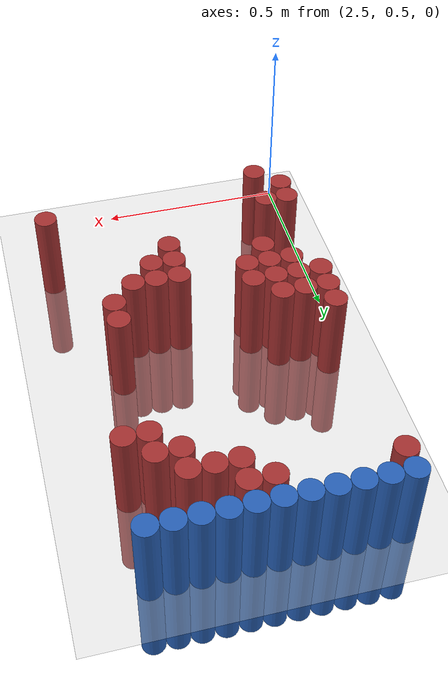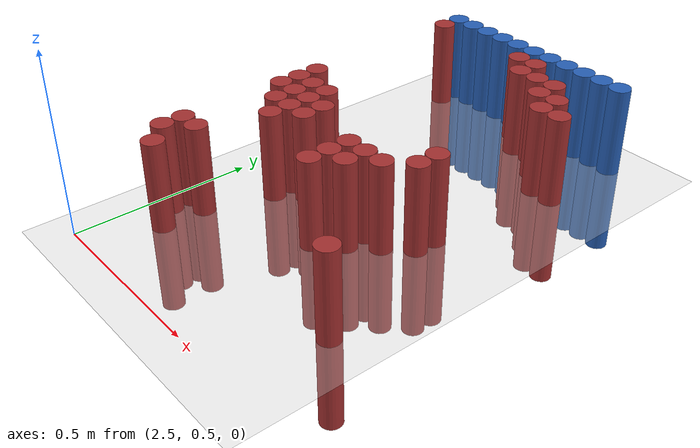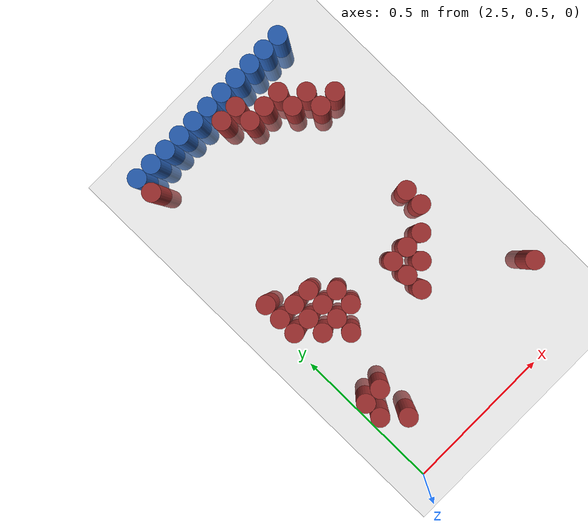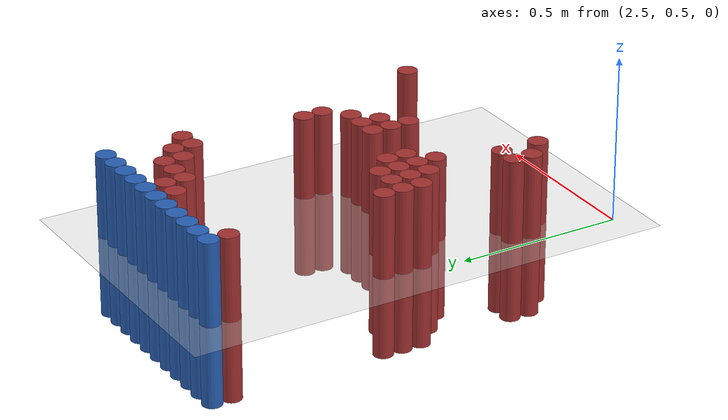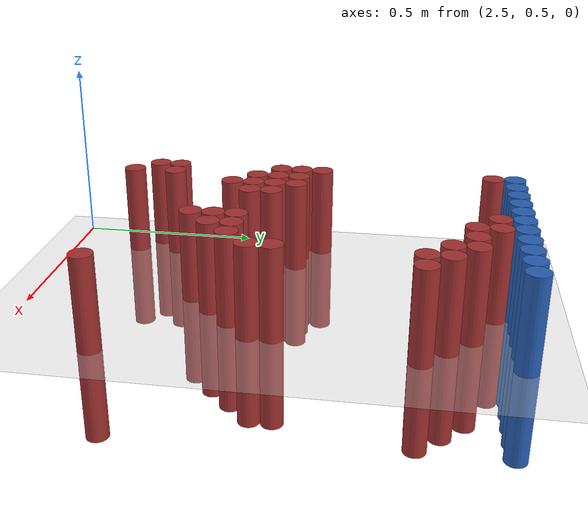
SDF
<sdf version="1.6">
 <world name="default">
  <model name="ground_plane">
   <static>1</static>
   <link name="link">
    <collision name="collision">
     <geometry><plane><normal>0 0 1</normal><size>100 100</size></plane></geometry>
     <surface><friction><ode><mu>100</mu><mu2>50</mu2></ode></friction></surface>
    </collision>
    <visual name="visual">
     <cast_shadows>0</cast_shadows>
     <geometry><plane><normal>0 0 1</normal><size>100 100</size></plane></geometry>
     <material>
      <script><uri>file://media/materials/scripts/gazebo.material</uri><name>Gazebo/Grey</name></script>
     </material>
    </visual>
   </link>
  </model>
  <model name="unit_cylinder_103">
   <static>1</static>
   <pose>2.550000 1.770000 0.000000 0.000000 0.000000 0.000000</pose>
   <link name="link">
    <inertial>
     <mass>1</mass>
     <inertia><ixx>0.145833</ixx><ixy>0</ixy><ixz>0</ixz><iyy>0.145833</iyy><iyz>0</iyz><izz>0.125</izz></inertia>
    </inertial>
    <collision name="collision">
     <geometry><cylinder><radius>0.030000</radius><length>0.5</length></cylinder></geometry>
    </collision>
    <visual name="visual">
     <geometry><cylinder><radius>0.030000</radius><length>0.5</length></cylinder></geometry>
     <material>
      <ambient>0.152000 0.379000 0.720000 1</ambient>
      <diffuse>0.152000 0.379000 0.720000 1</diffuse>
     </material>
     <material>
      <script><name>Gazebo/Grey</name><uri>file://media/materials/scripts/gazebo.material</uri></script>
     </material>
    </visual>
   </link>
  </model>
  <model name="unit_cylinder_104">
   <static>1</static>
   <pose>2.610000 1.770000 0.000000 0.000000 0.000000 0.000000</pose>
   <link name="link">
    <inertial>
     <mass>1</mass>
     <inertia><ixx>0.145833</ixx><ixy>0</ixy><ixz>0</ixz><iyy>0.145833</iyy><iyz>0</iyz><izz>0.125</izz></inertia>
    </inertial>
    <collision name="collision">
     <geometry><cylinder><radius>0.030000</radius><length>0.5</length></cylinder></geometry>
    </collision>
    <visual name="visual">
     <geometry><cylinder><radius>0.030000</radius><length>0.5</length></cylinder></geometry>
     <material>
      <ambient>0.152000 0.379000 0.720000 1</ambient>
      <diffuse>0.152000 0.379000 0.720000 1</diffuse>
     </material>
     <material>
      <script><name>Gazebo/Grey</name><uri>file://media/materials/scripts/gazebo.material</uri></script>
     </material>
    </visual>
   </link>
  </model>
  <model name="unit_cylinder_105">
   <static>1</static>
   <pose>2.670000 1.770000 0.000000 0.000000 0.000000 0.000000</pose>
   <link name="link">
    <inertial>
     <mass>1</mass>
     <inertia><ixx>0.145833</ixx><ixy>0</ixy><ixz>0</ixz><iyy>0.145833</iyy><iyz>0</iyz><izz>0.125</izz></inertia>
    </inertial>
    <collision name="collision">
     <geometry><cylinder><radius>0.030000</radius><length>0.5</length></cylinder></geometry>
    </collision>
    <visual name="visual">
     <geometry><cylinder><radius>0.030000</radius><length>0.5</length></cylinder></geometry>
     <material>
      <ambient>0.152000 0.379000 0.720000 1</ambient>
      <diffuse>0.152000 0.379000 0.720000 1</diffuse>
     </material>
     <material>
      <script><name>Gazebo/Grey</name><uri>file://media/materials/scripts/gazebo.material</uri></script>
     </material>
    </visual>
   </link>
  </model>
  <model name="unit_cylinder_106">
   <static>1</static>
   <pose>2.730000 1.770000 0.000000 0.000000 0.000000 0.000000</pose>
   <link name="link">
    <inertial>
     <mass>1</mass>
     <inertia><ixx>0.145833</ixx><ixy>0</ixy><ixz>0</ixz><iyy>0.145833</iyy><iyz>0</iyz><izz>0.125</izz></inertia>
    </inertial>
    <collision name="collision">
     <geometry><cylinder><radius>0.030000</radius><length>0.5</length></cylinder></geometry>
    </collision>
    <visual name="visual">
     <geometry><cylinder><radius>0.030000</radius><length>0.5</length></cylinder></geometry>
     <material>
      <ambient>0.152000 0.379000 0.720000 1</ambient>
      <diffuse>0.152000 0.379000 0.720000 1</diffuse>
     </material>
     <material>
      <script><name>Gazebo/Grey</name><uri>file://media/materials/scripts/gazebo.material</uri></script>
     </material>
    </visual>
   </link>
  </model>
  <model name="unit_cylinder_107">
   <static>1</static>
   <pose>2.790000 1.770000 0.000000 0.000000 0.000000 0.000000</pose>
   <link name="link">
    <inertial>
     <mass>1</mass>
     <inertia><ixx>0.145833</ixx><ixy>0</ixy><ixz>0</ixz><iyy>0.145833</iyy><iyz>0</iyz><izz>0.125</izz></inertia>
    </inertial>
    <collision name="collision">
     <geometry><cylinder><radius>0.030000</radius><length>0.5</length></cylinder></geometry>
    </collision>
    <visual name="visual">
     <geometry><cylinder><radius>0.030000</radius><length>0.5</length></cylinder></geometry>
     <material>
      <ambient>0.152000 0.379000 0.720000 1</ambient>
      <diffuse>0.152000 0.379000 0.720000 1</diffuse>
     </material>
     <material>
      <script><name>Gazebo/Grey</name><uri>file://media/materials/scripts/gazebo.material</uri></script>
     </material>
    </visual>
   </link>
  </model>
  <model name="unit_cylinder_108">
   <static>1</static>
   <pose>2.850000 1.770000 0.000000 0.000000 0.000000 0.000000</pose>
   <link name="link">
    <inertial>
     <mass>1</mass>
     <inertia><ixx>0.145833</ixx><ixy>0</ixy><ixz>0</ixz><iyy>0.145833</iyy><iyz>0</iyz><izz>0.125</izz></inertia>
    </inertial>
    <collision name="collision">
     <geometry><cylinder><radius>0.030000</radius><length>0.5</length></cylinder></geometry>
    </collision>
    <visual name="visual">
     <geometry><cylinder><radius>0.030000</radius><length>0.5</length></cylinder></geometry>
     <material>
      <ambient>0.152000 0.379000 0.720000 1</ambient>
      <diffuse>0.152000 0.379000 0.720000 1</diffuse>
     </material>
     <material>
      <script><name>Gazebo/Grey</name><uri>file://media/materials/scripts/gazebo.material</uri></script>
     </material>
    </visual>
   </link>
  </model>
  <model name="unit_cylinder_109">
   <static>1</static>
   <pose>2.910000 1.770000 0.000000 0.000000 0.000000 0.000000</pose>
   <link name="link">
    <inertial>
     <mass>1</mass>
     <inertia><ixx>0.145833</ixx><ixy>0</ixy><ixz>0</ixz><iyy>0.145833</iyy><iyz>0</iyz><izz>0.125</izz></inertia>
    </inertial>
    <collision name="collision">
     <geometry><cylinder><radius>0.030000</radius><length>0.5</length></cylinder></geometry>
    </collision>
    <visual name="visual">
     <geometry><cylinder><radius>0.030000</radius><length>0.5</length></cylinder></geometry>
     <material>
      <ambient>0.152000 0.379000 0.720000 1</ambient>
      <diffuse>0.152000 0.379000 0.720000 1</diffuse>
     </material>
     <material>
      <script><name>Gazebo/Grey</name><uri>file://media/materials/scripts/gazebo.material</uri></script>
     </material>
    </visual>
   </link>
  </model>
  <model name="unit_cylinder_110">
   <static>1</static>
   <pose>2.970000 1.770000 0.000000 0.000000 0.000000 0.000000</pose>
   <link name="link">
    <inertial>
     <mass>1</mass>
     <inertia><ixx>0.145833</ixx><ixy>0</ixy><ixz>0</ixz><iyy>0.145833</iyy><iyz>0</iyz><izz>0.125</izz></inertia>
    </inertial>
    <collision name="collision">
     <geometry><cylinder><radius>0.030000</radius><length>0.5</length></cylinder></geometry>
    </collision>
    <visual name="visual">
     <geometry><cylinder><radius>0.030000</radius><length>0.5</length></cylinder></geometry>
     <material>
      <ambient>0.152000 0.379000 0.720000 1</ambient>
      <diffuse>0.152000 0.379000 0.720000 1</diffuse>
     </material>
     <material>
      <script><name>Gazebo/Grey</name><uri>file://media/materials/scripts/gazebo.material</uri></script>
     </material>
    </visual>
   </link>
  </model>
  <model name="unit_cylinder_111">
   <static>1</static>
   <pose>3.030000 1.770000 0.000000 0.000000 0.000000 0.000000</pose>
   <link name="link">
    <inertial>
     <mass>1</mass>
     <inertia><ixx>0.145833</ixx><ixy>0</ixy><ixz>0</ixz><iyy>0.145833</iyy><iyz>0</iyz><izz>0.125</izz></inertia>
    </inertial>
    <collision name="collision">
     <geometry><cylinder><radius>0.030000</radius><length>0.5</length></cylinder></geometry>
    </collision>
    <visual name="visual">
     <geometry><cylinder><radius>0.030000</radius><length>0.5</length></cylinder></geometry>
     <material>
      <ambient>0.152000 0.379000 0.720000 1</ambient>
      <diffuse>0.152000 0.379000 0.720000 1</diffuse>
     </material>
     <material>
      <script><name>Gazebo/Grey</name><uri>file://media/materials/scripts/gazebo.material</uri></script>
     </material>
    </visual>
   </link>
  </model>
  <model name="unit_cylinder_112">
   <static>1</static>
   <pose>3.090000 1.770000 0.000000 0.000000 0.000000 0.000000</pose>
   <link name="link">
    <inertial>
     <mass>1</mass>
     <inertia><ixx>0.145833</ixx><ixy>0</ixy><ixz>0</ixz><iyy>0.145833</iyy><iyz>0</iyz><izz>0.125</izz></inertia>
    </inertial>
    <collision name="collision">
     <geometry><cylinder><radius>0.030000</radius><length>0.5</length></cylinder></geometry>
    </collision>
    <visual name="visual">
     <geometry><cylinder><radius>0.030000</radius><length>0.5</length></cylinder></geometry>
     <material>
      <ambient>0.152000 0.379000 0.720000 1</ambient>
      <diffuse>0.152000 0.379000 0.720000 1</diffuse>
     </material>
     <material>
      <script><name>Gazebo/Grey</name><uri>file://media/materials/scripts/gazebo.material</uri></script>
     </material>
    </visual>
   </link>
  </model>
  <model name="unit_cylinder_113">
   <static>1</static>
   <pose>3.150000 1.770000 0.000000 0.000000 0.000000 0.000000</pose>
   <link name="link">
    <inertial>
     <mass>1</mass>
     <inertia><ixx>0.145833</ixx><ixy>0</ixy><ixz>0</ixz><iyy>0.145833</iyy><iyz>0</iyz><izz>0.125</izz></inertia>
    </inertial>
    <collision name="collision">
     <geometry><cylinder><radius>0.030000</radius><length>0.5</length></cylinder></geometry>
    </collision>
    <visual name="visual">
     <geometry><cylinder><radius>0.030000</radius><length>0.5</length></cylinder></geometry>
     <material>
      <ambient>0.152000 0.379000 0.720000 1</ambient>
      <diffuse>0.152000 0.379000 0.720000 1</diffuse>
     </material>
     <material>
      <script><name>Gazebo/Grey</name><uri>file://media/materials/scripts/gazebo.material</uri></script>
     </material>
    </visual>
   </link>
  </model>
  <model name="unit_cylinder_126">
   <static>1</static>
   <pose>2.550000 1.710000 0.000000 0.000000 0.000000 0.000000</pose>
   <link name="link">
    <inertial>
     <mass>1</mass>
     <inertia><ixx>0.145833</ixx><ixy>0</ixy><ixz>0</ixz><iyy>0.145833</iyy><iyz>0</iyz><izz>0.125</izz></inertia>
    </inertial>
    <collision name="collision">
     <geometry><cylinder><radius>0.030000</radius><length>0.5</length></cylinder></geometry>
    </collision>
    <visual name="visual">
     <geometry><cylinder><radius>0.030000</radius><length>0.5</length></cylinder></geometry>
     <material>
      <ambient>0.648000 0.192000 0.192000 1</ambient>
      <diffuse>0.648000 0.192000 0.192000 1</diffuse>
     </material>
     <material>
      <script><name>Gazebo/Grey</name><uri>file://media/materials/scripts/gazebo.material</uri></script>
     </material>
    </visual>
   </link>
  </model>
  <model name="unit_cylinder_127">
   <static>1</static>
   <pose>2.850000 1.710000 0.000000 0.000000 0.000000 0.000000</pose>
   <link name="link">
    <inertial>
     <mass>1</mass>
     <inertia><ixx>0.145833</ixx><ixy>0</ixy><ixz>0</ixz><iyy>0.145833</iyy><iyz>0</iyz><izz>0.125</izz></inertia>
    </inertial>
    <collision name="collision">
     <geometry><cylinder><radius>0.030000</radius><length>0.5</length></cylinder></geometry>
    </collision>
    <visual name="visual">
     <geometry><cylinder><radius>0.030000</radius><length>0.5</length></cylinder></geometry>
     <material>
      <ambient>0.648000 0.192000 0.192000 1</ambient>
      <diffuse>0.648000 0.192000 0.192000 1</diffuse>
     </material>
     <material>
      <script><name>Gazebo/Grey</name><uri>file://media/materials/scripts/gazebo.material</uri></script>
     </material>
    </visual>
   </link>
  </model>
  <model name="unit_cylinder_128">
   <static>1</static>
   <pose>2.910000 1.710000 0.000000 0.000000 0.000000 0.000000</pose>
   <link name="link">
    <inertial>
     <mass>1</mass>
     <inertia><ixx>0.145833</ixx><ixy>0</ixy><ixz>0</ixz><iyy>0.145833</iyy><iyz>0</iyz><izz>0.125</izz></inertia>
    </inertial>
    <collision name="collision">
     <geometry><cylinder><radius>0.030000</radius><length>0.5</length></cylinder></geometry>
    </collision>
    <visual name="visual">
     <geometry><cylinder><radius>0.030000</radius><length>0.5</length></cylinder></geometry>
     <material>
      <ambient>0.648000 0.192000 0.192000 1</ambient>
      <diffuse>0.648000 0.192000 0.192000 1</diffuse>
     </material>
     <material>
      <script><name>Gazebo/Grey</name><uri>file://media/materials/scripts/gazebo.material</uri></script>
     </material>
    </visual>
   </link>
  </model>
  <model name="unit_cylinder_134">
   <static>1</static>
   <pose>2.910000 1.650000 0.000000 0.000000 0.000000 0.000000</pose>
   <link name="link">
    <inertial>
     <mass>1</mass>
     <inertia><ixx>0.145833</ixx><ixy>0</ixy><ixz>0</ixz><iyy>0.145833</iyy><iyz>0</iyz><izz>0.125</izz></inertia>
    </inertial>
    <collision name="collision">
     <geometry><cylinder><radius>0.030000</radius><length>0.5</length></cylinder></geometry>
    </collision>
    <visual name="visual">
     <geometry><cylinder><radius>0.030000</radius><length>0.5</length></cylinder></geometry>
     <material>
      <ambient>0.648000 0.192000 0.192000 1</ambient>
      <diffuse>0.648000 0.192000 0.192000 1</diffuse>
     </material>
     <material>
      <script><name>Gazebo/Grey</name><uri>file://media/materials/scripts/gazebo.material</uri></script>
     </material>
    </visual>
   </link>
  </model>
  <model name="unit_cylinder_135">
   <static>1</static>
   <pose>2.970000 1.650000 0.000000 0.000000 0.000000 0.000000</pose>
   <link name="link">
    <inertial>
     <mass>1</mass>
     <inertia><ixx>0.145833</ixx><ixy>0</ixy><ixz>0</ixz><iyy>0.145833</iyy><iyz>0</iyz><izz>0.125</izz></inertia>
    </inertial>
    <collision name="collision">
     <geometry><cylinder><radius>0.030000</radius><length>0.5</length></cylinder></geometry>
    </collision>
    <visual name="visual">
     <geometry><cylinder><radius>0.030000</radius><length>0.5</length></cylinder></geometry>
     <material>
      <ambient>0.648000 0.192000 0.192000 1</ambient>
      <diffuse>0.648000 0.192000 0.192000 1</diffuse>
     </material>
     <material>
      <script><name>Gazebo/Grey</name><uri>file://media/materials/scripts/gazebo.material</uri></script>
     </material>
    </visual>
   </link>
  </model>
  <model name="unit_cylinder_136">
   <static>1</static>
   <pose>3.030000 1.650000 0.000000 0.000000 0.000000 0.000000</pose>
   <link name="link">
    <inertial>
     <mass>1</mass>
     <inertia><ixx>0.145833</ixx><ixy>0</ixy><ixz>0</ixz><iyy>0.145833</iyy><iyz>0</iyz><izz>0.125</izz></inertia>
    </inertial>
    <collision name="collision">
     <geometry><cylinder><radius>0.030000</radius><length>0.5</length></cylinder></geometry>
    </collision>
    <visual name="visual">
     <geometry><cylinder><radius>0.030000</radius><length>0.5</length></cylinder></geometry>
     <material>
      <ambient>0.648000 0.192000 0.192000 1</ambient>
      <diffuse>0.648000 0.192000 0.192000 1</diffuse>
     </material>
     <material>
      <script><name>Gazebo/Grey</name><uri>file://media/materials/scripts/gazebo.material</uri></script>
     </material>
    </visual>
   </link>
  </model>
  <model name="unit_cylinder_141">
   <static>1</static>
   <pose>3.030000 1.590000 0.000000 0.000000 0.000000 0.000000</pose>
   <link name="link">
    <inertial>
     <mass>1</mass>
     <inertia><ixx>0.145833</ixx><ixy>0</ixy><ixz>0</ixz><iyy>0.145833</iyy><iyz>0</iyz><izz>0.125</izz></inertia>
    </inertial>
    <collision name="collision">
     <geometry><cylinder><radius>0.030000</radius><length>0.5</length></cylinder></geometry>
    </collision>
    <visual name="visual">
     <geometry><cylinder><radius>0.030000</radius><length>0.5</length></cylinder></geometry>
     <material>
      <ambient>0.648000 0.192000 0.192000 1</ambient>
      <diffuse>0.648000 0.192000 0.192000 1</diffuse>
     </material>
     <material>
      <script><name>Gazebo/Grey</name><uri>file://media/materials/scripts/gazebo.material</uri></script>
     </material>
    </visual>
   </link>
  </model>
  <model name="unit_cylinder_142">
   <static>1</static>
   <pose>3.090000 1.590000 0.000000 0.000000 0.000000 0.000000</pose>
   <link name="link">
    <inertial>
     <mass>1</mass>
     <inertia><ixx>0.145833</ixx><ixy>0</ixy><ixz>0</ixz><iyy>0.145833</iyy><iyz>0</iyz><izz>0.125</izz></inertia>
    </inertial>
    <collision name="collision">
     <geometry><cylinder><radius>0.030000</radius><length>0.5</length></cylinder></geometry>
    </collision>
    <visual name="visual">
     <geometry><cylinder><radius>0.030000</radius><length>0.5</length></cylinder></geometry>
     <material>
      <ambient>0.648000 0.192000 0.192000 1</ambient>
      <diffuse>0.648000 0.192000 0.192000 1</diffuse>
     </material>
     <material>
      <script><name>Gazebo/Grey</name><uri>file://media/materials/scripts/gazebo.material</uri></script>
     </material>
    </visual>
   </link>
  </model>
  <model name="unit_cylinder_148">
   <static>1</static>
   <pose>3.090000 1.530000 0.000000 0.000000 0.000000 0.000000</pose>
   <link name="link">
    <inertial>
     <mass>1</mass>
     <inertia><ixx>0.145833</ixx><ixy>0</ixy><ixz>0</ixz><iyy>0.145833</iyy><iyz>0</iyz><izz>0.125</izz></inertia>
    </inertial>
    <collision name="collision">
     <geometry><cylinder><radius>0.030000</radius><length>0.5</length></cylinder></geometry>
    </collision>
    <visual name="visual">
     <geometry><cylinder><radius>0.030000</radius><length>0.5</length></cylinder></geometry>
     <material>
      <ambient>0.648000 0.192000 0.192000 1</ambient>
      <diffuse>0.648000 0.192000 0.192000 1</diffuse>
     </material>
     <material>
      <script><name>Gazebo/Grey</name><uri>file://media/materials/scripts/gazebo.material</uri></script>
     </material>
    </visual>
   </link>
  </model>
  <model name="unit_cylinder_149">
   <static>1</static>
   <pose>3.150000 1.530000 0.000000 0.000000 0.000000 0.000000</pose>
   <link name="link">
    <inertial>
     <mass>1</mass>
     <inertia><ixx>0.145833</ixx><ixy>0</ixy><ixz>0</ixz><iyy>0.145833</iyy><iyz>0</iyz><izz>0.125</izz></inertia>
    </inertial>
    <collision name="collision">
     <geometry><cylinder><radius>0.030000</radius><length>0.5</length></cylinder></geometry>
    </collision>
    <visual name="visual">
     <geometry><cylinder><radius>0.030000</radius><length>0.5</length></cylinder></geometry>
     <material>
      <ambient>0.648000 0.192000 0.192000 1</ambient>
      <diffuse>0.648000 0.192000 0.192000 1</diffuse>
     </material>
     <material>
      <script><name>Gazebo/Grey</name><uri>file://media/materials/scripts/gazebo.material</uri></script>
     </material>
    </visual>
   </link>
  </model>
  <model name="unit_cylinder_155">
   <static>1</static>
   <pose>2.550000 1.230000 0.000000 0.000000 0.000000 0.000000</pose>
   <link name="link">
    <inertial>
     <mass>1</mass>
     <inertia><ixx>0.145833</ixx><ixy>0</ixy><ixz>0</ixz><iyy>0.145833</iyy><iyz>0</iyz><izz>0.125</izz></inertia>
    </inertial>
    <collision name="collision">
     <geometry><cylinder><radius>0.030000</radius><length>0.5</length></cylinder></geometry>
    </collision>
    <visual name="visual">
     <geometry><cylinder><radius>0.030000</radius><length>0.5</length></cylinder></geometry>
     <material>
      <ambient>0.648000 0.192000 0.192000 1</ambient>
      <diffuse>0.648000 0.192000 0.192000 1</diffuse>
     </material>
     <material>
      <script><name>Gazebo/Grey</name><uri>file://media/materials/scripts/gazebo.material</uri></script>
     </material>
    </visual>
   </link>
  </model>
  <model name="unit_cylinder_157">
   <static>1</static>
   <pose>2.550000 1.170000 0.000000 0.000000 0.000000 0.000000</pose>
   <link name="link">
    <inertial>
     <mass>1</mass>
     <inertia><ixx>0.145833</ixx><ixy>0</ixy><ixz>0</ixz><iyy>0.145833</iyy><iyz>0</iyz><izz>0.125</izz></inertia>
    </inertial>
    <collision name="collision">
     <geometry><cylinder><radius>0.030000</radius><length>0.5</length></cylinder></geometry>
    </collision>
    <visual name="visual">
     <geometry><cylinder><radius>0.030000</radius><length>0.5</length></cylinder></geometry>
     <material>
      <ambient>0.648000 0.192000 0.192000 1</ambient>
      <diffuse>0.648000 0.192000 0.192000 1</diffuse>
     </material>
     <material>
      <script><name>Gazebo/Grey</name><uri>file://media/materials/scripts/gazebo.material</uri></script>
     </material>
    </visual>
   </link>
  </model>
  <model name="unit_cylinder_158">
   <static>1</static>
   <pose>2.610000 1.170000 0.000000 0.000000 0.000000 0.000000</pose>
   <link name="link">
    <inertial>
     <mass>1</mass>
     <inertia><ixx>0.145833</ixx><ixy>0</ixy><ixz>0</ixz><iyy>0.145833</iyy><iyz>0</iyz><izz>0.125</izz></inertia>
    </inertial>
    <collision name="collision">
     <geometry><cylinder><radius>0.030000</radius><length>0.5</length></cylinder></geometry>
    </collision>
    <visual name="visual">
     <geometry><cylinder><radius>0.030000</radius><length>0.5</length></cylinder></geometry>
     <material>
      <ambient>0.648000 0.192000 0.192000 1</ambient>
      <diffuse>0.648000 0.192000 0.192000 1</diffuse>
     </material>
     <material>
      <script><name>Gazebo/Grey</name><uri>file://media/materials/scripts/gazebo.material</uri></script>
     </material>
    </visual>
   </link>
  </model>
  <model name="unit_cylinder_159">
   <static>1</static>
   <pose>2.670000 1.170000 0.000000 0.000000 0.000000 0.000000</pose>
   <link name="link">
    <inertial>
     <mass>1</mass>
     <inertia><ixx>0.145833</ixx><ixy>0</ixy><ixz>0</ixz><iyy>0.145833</iyy><iyz>0</iyz><izz>0.125</izz></inertia>
    </inertial>
    <collision name="collision">
     <geometry><cylinder><radius>0.030000</radius><length>0.5</length></cylinder></geometry>
    </collision>
    <visual name="visual">
     <geometry><cylinder><radius>0.030000</radius><length>0.5</length></cylinder></geometry>
     <material>
      <ambient>0.648000 0.192000 0.192000 1</ambient>
      <diffuse>0.648000 0.192000 0.192000 1</diffuse>
     </material>
     <material>
      <script><name>Gazebo/Grey</name><uri>file://media/materials/scripts/gazebo.material</uri></script>
     </material>
    </visual>
   </link>
  </model>
  <model name="unit_cylinder_160">
   <static>1</static>
   <pose>3.090000 1.170000 0.000000 0.000000 0.000000 0.000000</pose>
   <link name="link">
    <inertial>
     <mass>1</mass>
     <inertia><ixx>0.145833</ixx><ixy>0</ixy><ixz>0</ixz><iyy>0.145833</iyy><iyz>0</iyz><izz>0.125</izz></inertia>
    </inertial>
    <collision name="collision">
     <geometry><cylinder><radius>0.030000</radius><length>0.5</length></cylinder></geometry>
    </collision>
    <visual name="visual">
     <geometry><cylinder><radius>0.030000</radius><length>0.5</length></cylinder></geometry>
     <material>
      <ambient>0.648000 0.192000 0.192000 1</ambient>
      <diffuse>0.648000 0.192000 0.192000 1</diffuse>
     </material>
     <material>
      <script><name>Gazebo/Grey</name><uri>file://media/materials/scripts/gazebo.material</uri></script>
     </material>
    </visual>
   </link>
  </model>
  <model name="unit_cylinder_165">
   <static>1</static>
   <pose>2.550000 1.110000 0.000000 0.000000 0.000000 0.000000</pose>
   <link name="link">
    <inertial>
     <mass>1</mass>
     <inertia><ixx>0.145833</ixx><ixy>0</ixy><ixz>0</ixz><iyy>0.145833</iyy><iyz>0</iyz><izz>0.125</izz></inertia>
    </inertial>
    <collision name="collision">
     <geometry><cylinder><radius>0.030000</radius><length>0.5</length></cylinder></geometry>
    </collision>
    <visual name="visual">
     <geometry><cylinder><radius>0.030000</radius><length>0.5</length></cylinder></geometry>
     <material>
      <ambient>0.648000 0.192000 0.192000 1</ambient>
      <diffuse>0.648000 0.192000 0.192000 1</diffuse>
     </material>
     <material>
      <script><name>Gazebo/Grey</name><uri>file://media/materials/scripts/gazebo.material</uri></script>
     </material>
    </visual>
   </link>
  </model>
  <model name="unit_cylinder_166">
   <static>1</static>
   <pose>2.610000 1.110000 0.000000 0.000000 0.000000 0.000000</pose>
   <link name="link">
    <inertial>
     <mass>1</mass>
     <inertia><ixx>0.145833</ixx><ixy>0</ixy><ixz>0</ixz><iyy>0.145833</iyy><iyz>0</iyz><izz>0.125</izz></inertia>
    </inertial>
    <collision name="collision">
     <geometry><cylinder><radius>0.030000</radius><length>0.5</length></cylinder></geometry>
    </collision>
    <visual name="visual">
     <geometry><cylinder><radius>0.030000</radius><length>0.5</length></cylinder></geometry>
     <material>
      <ambient>0.648000 0.192000 0.192000 1</ambient>
      <diffuse>0.648000 0.192000 0.192000 1</diffuse>
     </material>
     <material>
      <script><name>Gazebo/Grey</name><uri>file://media/materials/scripts/gazebo.material</uri></script>
     </material>
    </visual>
   </link>
  </model>
  <model name="unit_cylinder_167">
   <static>1</static>
   <pose>2.670000 1.110000 0.000000 0.000000 0.000000 0.000000</pose>
   <link name="link">
    <inertial>
     <mass>1</mass>
     <inertia><ixx>0.145833</ixx><ixy>0</ixy><ixz>0</ixz><iyy>0.145833</iyy><iyz>0</iyz><izz>0.125</izz></inertia>
    </inertial>
    <collision name="collision">
     <geometry><cylinder><radius>0.030000</radius><length>0.5</length></cylinder></geometry>
    </collision>
    <visual name="visual">
     <geometry><cylinder><radius>0.030000</radius><length>0.5</length></cylinder></geometry>
     <material>
      <ambient>0.648000 0.192000 0.192000 1</ambient>
      <diffuse>0.648000 0.192000 0.192000 1</diffuse>
     </material>
     <material>
      <script><name>Gazebo/Grey</name><uri>file://media/materials/scripts/gazebo.material</uri></script>
     </material>
    </visual>
   </link>
  </model>
  <model name="unit_cylinder_168">
   <static>1</static>
   <pose>2.730000 1.110000 0.000000 0.000000 0.000000 0.000000</pose>
   <link name="link">
    <inertial>
     <mass>1</mass>
     <inertia><ixx>0.145833</ixx><ixy>0</ixy><ixz>0</ixz><iyy>0.145833</iyy><iyz>0</iyz><izz>0.125</izz></inertia>
    </inertial>
    <collision name="collision">
     <geometry><cylinder><radius>0.030000</radius><length>0.5</length></cylinder></geometry>
    </collision>
    <visual name="visual">
     <geometry><cylinder><radius>0.030000</radius><length>0.5</length></cylinder></geometry>
     <material>
      <ambient>0.648000 0.192000 0.192000 1</ambient>
      <diffuse>0.648000 0.192000 0.192000 1</diffuse>
     </material>
     <material>
      <script><name>Gazebo/Grey</name><uri>file://media/materials/scripts/gazebo.material</uri></script>
     </material>
    </visual>
   </link>
  </model>
  <model name="unit_cylinder_169">
   <static>1</static>
   <pose>3.090000 1.110000 0.000000 0.000000 0.000000 0.000000</pose>
   <link name="link">
    <inertial>
     <mass>1</mass>
     <inertia><ixx>0.145833</ixx><ixy>0</ixy><ixz>0</ixz><iyy>0.145833</iyy><iyz>0</iyz><izz>0.125</izz></inertia>
    </inertial>
    <collision name="collision">
     <geometry><cylinder><radius>0.030000</radius><length>0.5</length></cylinder></geometry>
    </collision>
    <visual name="visual">
     <geometry><cylinder><radius>0.030000</radius><length>0.5</length></cylinder></geometry>
     <material>
      <ambient>0.648000 0.192000 0.192000 1</ambient>
      <diffuse>0.648000 0.192000 0.192000 1</diffuse>
     </material>
     <material>
      <script><name>Gazebo/Grey</name><uri>file://media/materials/scripts/gazebo.material</uri></script>
     </material>
    </visual>
   </link>
  </model>
  <model name="unit_cylinder_176">
   <static>1</static>
   <pose>2.610000 1.050000 0.000000 0.000000 0.000000 0.000000</pose>
   <link name="link">
    <inertial>
     <mass>1</mass>
     <inertia><ixx>0.145833</ixx><ixy>0</ixy><ixz>0</ixz><iyy>0.145833</iyy><iyz>0</iyz><izz>0.125</izz></inertia>
    </inertial>
    <collision name="collision">
     <geometry><cylinder><radius>0.030000</radius><length>0.5</length></cylinder></geometry>
    </collision>
    <visual name="visual">
     <geometry><cylinder><radius>0.030000</radius><length>0.5</length></cylinder></geometry>
     <material>
      <ambient>0.648000 0.192000 0.192000 1</ambient>
      <diffuse>0.648000 0.192000 0.192000 1</diffuse>
     </material>
     <material>
      <script><name>Gazebo/Grey</name><uri>file://media/materials/scripts/gazebo.material</uri></script>
     </material>
    </visual>
   </link>
  </model>
  <model name="unit_cylinder_177">
   <static>1</static>
   <pose>2.670000 1.050000 0.000000 0.000000 0.000000 0.000000</pose>
   <link name="link">
    <inertial>
     <mass>1</mass>
     <inertia><ixx>0.145833</ixx><ixy>0</ixy><ixz>0</ixz><iyy>0.145833</iyy><iyz>0</iyz><izz>0.125</izz></inertia>
    </inertial>
    <collision name="collision">
     <geometry><cylinder><radius>0.030000</radius><length>0.5</length></cylinder></geometry>
    </collision>
    <visual name="visual">
     <geometry><cylinder><radius>0.030000</radius><length>0.5</length></cylinder></geometry>
     <material>
      <ambient>0.648000 0.192000 0.192000 1</ambient>
      <diffuse>0.648000 0.192000 0.192000 1</diffuse>
     </material>
     <material>
      <script><name>Gazebo/Grey</name><uri>file://media/materials/scripts/gazebo.material</uri></script>
     </material>
    </visual>
   </link>
  </model>
  <model name="unit_cylinder_178">
   <static>1</static>
   <pose>2.730000 1.050000 0.000000 0.000000 0.000000 0.000000</pose>
   <link name="link">
    <inertial>
     <mass>1</mass>
     <inertia><ixx>0.145833</ixx><ixy>0</ixy><ixz>0</ixz><iyy>0.145833</iyy><iyz>0</iyz><izz>0.125</izz></inertia>
    </inertial>
    <collision name="collision">
     <geometry><cylinder><radius>0.030000</radius><length>0.5</length></cylinder></geometry>
    </collision>
    <visual name="visual">
     <geometry><cylinder><radius>0.030000</radius><length>0.5</length></cylinder></geometry>
     <material>
      <ambient>0.648000 0.192000 0.192000 1</ambient>
      <diffuse>0.648000 0.192000 0.192000 1</diffuse>
     </material>
     <material>
      <script><name>Gazebo/Grey</name><uri>file://media/materials/scripts/gazebo.material</uri></script>
     </material>
    </visual>
   </link>
  </model>
  <model name="unit_cylinder_179">
   <static>1</static>
   <pose>2.910000 1.050000 0.000000 0.000000 0.000000 0.000000</pose>
   <link name="link">
    <inertial>
     <mass>1</mass>
     <inertia><ixx>0.145833</ixx><ixy>0</ixy><ixz>0</ixz><iyy>0.145833</iyy><iyz>0</iyz><izz>0.125</izz></inertia>
    </inertial>
    <collision name="collision">
     <geometry><cylinder><radius>0.030000</radius><length>0.5</length></cylinder></geometry>
    </collision>
    <visual name="visual">
     <geometry><cylinder><radius>0.030000</radius><length>0.5</length></cylinder></geometry>
     <material>
      <ambient>0.648000 0.192000 0.192000 1</ambient>
      <diffuse>0.648000 0.192000 0.192000 1</diffuse>
     </material>
     <material>
      <script><name>Gazebo/Grey</name><uri>file://media/materials/scripts/gazebo.material</uri></script>
     </material>
    </visual>
   </link>
  </model>
  <model name="unit_cylinder_180">
   <static>1</static>
   <pose>2.970000 1.050000 0.000000 0.000000 0.000000 0.000000</pose>
   <link name="link">
    <inertial>
     <mass>1</mass>
     <inertia><ixx>0.145833</ixx><ixy>0</ixy><ixz>0</ixz><iyy>0.145833</iyy><iyz>0</iyz><izz>0.125</izz></inertia>
    </inertial>
    <collision name="collision">
     <geometry><cylinder><radius>0.030000</radius><length>0.5</length></cylinder></geometry>
    </collision>
    <visual name="visual">
     <geometry><cylinder><radius>0.030000</radius><length>0.5</length></cylinder></geometry>
     <material>
      <ambient>0.648000 0.192000 0.192000 1</ambient>
      <diffuse>0.648000 0.192000 0.192000 1</diffuse>
     </material>
     <material>
      <script><name>Gazebo/Grey</name><uri>file://media/materials/scripts/gazebo.material</uri></script>
     </material>
    </visual>
   </link>
  </model>
  <model name="unit_cylinder_181">
   <static>1</static>
   <pose>3.030000 1.050000 0.000000 0.000000 0.000000 0.000000</pose>
   <link name="link">
    <inertial>
     <mass>1</mass>
     <inertia><ixx>0.145833</ixx><ixy>0</ixy><ixz>0</ixz><iyy>0.145833</iyy><iyz>0</iyz><izz>0.125</izz></inertia>
    </inertial>
    <collision name="collision">
     <geometry><cylinder><radius>0.030000</radius><length>0.5</length></cylinder></geometry>
    </collision>
    <visual name="visual">
     <geometry><cylinder><radius>0.030000</radius><length>0.5</length></cylinder></geometry>
     <material>
      <ambient>0.648000 0.192000 0.192000 1</ambient>
      <diffuse>0.648000 0.192000 0.192000 1</diffuse>
     </material>
     <material>
      <script><name>Gazebo/Grey</name><uri>file://media/materials/scripts/gazebo.material</uri></script>
     </material>
    </visual>
   </link>
  </model>
  <model name="unit_cylinder_185">
   <static>1</static>
   <pose>2.670000 0.990000 0.000000 0.000000 0.000000 0.000000</pose>
   <link name="link">
    <inertial>
     <mass>1</mass>
     <inertia><ixx>0.145833</ixx><ixy>0</ixy><ixz>0</ixz><iyy>0.145833</iyy><iyz>0</iyz><izz>0.125</izz></inertia>
    </inertial>
    <collision name="collision">
     <geometry><cylinder><radius>0.030000</radius><length>0.5</length></cylinder></geometry>
    </collision>
    <visual name="visual">
     <geometry><cylinder><radius>0.030000</radius><length>0.5</length></cylinder></geometry>
     <material>
      <ambient>0.648000 0.192000 0.192000 1</ambient>
      <diffuse>0.648000 0.192000 0.192000 1</diffuse>
     </material>
     <material>
      <script><name>Gazebo/Grey</name><uri>file://media/materials/scripts/gazebo.material</uri></script>
     </material>
    </visual>
   </link>
  </model>
  <model name="unit_cylinder_186">
   <static>1</static>
   <pose>2.910000 0.990000 0.000000 0.000000 0.000000 0.000000</pose>
   <link name="link">
    <inertial>
     <mass>1</mass>
     <inertia><ixx>0.145833</ixx><ixy>0</ixy><ixz>0</ixz><iyy>0.145833</iyy><iyz>0</iyz><izz>0.125</izz></inertia>
    </inertial>
    <collision name="collision">
     <geometry><cylinder><radius>0.030000</radius><length>0.5</length></cylinder></geometry>
    </collision>
    <visual name="visual">
     <geometry><cylinder><radius>0.030000</radius><length>0.5</length></cylinder></geometry>
     <material>
      <ambient>0.648000 0.192000 0.192000 1</ambient>
      <diffuse>0.648000 0.192000 0.192000 1</diffuse>
     </material>
     <material>
      <script><name>Gazebo/Grey</name><uri>file://media/materials/scripts/gazebo.material</uri></script>
     </material>
    </visual>
   </link>
  </model>
  <model name="unit_cylinder_187">
   <static>1</static>
   <pose>2.970000 0.990000 0.000000 0.000000 0.000000 0.000000</pose>
   <link name="link">
    <inertial>
     <mass>1</mass>
     <inertia><ixx>0.145833</ixx><ixy>0</ixy><ixz>0</ixz><iyy>0.145833</iyy><iyz>0</iyz><izz>0.125</izz></inertia>
    </inertial>
    <collision name="collision">
     <geometry><cylinder><radius>0.030000</radius><length>0.5</length></cylinder></geometry>
    </collision>
    <visual name="visual">
     <geometry><cylinder><radius>0.030000</radius><length>0.5</length></cylinder></geometry>
     <material>
      <ambient>0.648000 0.192000 0.192000 1</ambient>
      <diffuse>0.648000 0.192000 0.192000 1</diffuse>
     </material>
     <material>
      <script><name>Gazebo/Grey</name><uri>file://media/materials/scripts/gazebo.material</uri></script>
     </material>
    </visual>
   </link>
  </model>
  <model name="unit_cylinder_189">
   <static>1</static>
   <pose>2.910000 0.930000 0.000000 0.000000 0.000000 0.000000</pose>
   <link name="link">
    <inertial>
     <mass>1</mass>
     <inertia><ixx>0.145833</ixx><ixy>0</ixy><ixz>0</ixz><iyy>0.145833</iyy><iyz>0</iyz><izz>0.125</izz></inertia>
    </inertial>
    <collision name="collision">
     <geometry><cylinder><radius>0.030000</radius><length>0.5</length></cylinder></geometry>
    </collision>
    <visual name="visual">
     <geometry><cylinder><radius>0.030000</radius><length>0.5</length></cylinder></geometry>
     <material>
      <ambient>0.648000 0.192000 0.192000 1</ambient>
      <diffuse>0.648000 0.192000 0.192000 1</diffuse>
     </material>
     <material>
      <script><name>Gazebo/Grey</name><uri>file://media/materials/scripts/gazebo.material</uri></script>
     </material>
    </visual>
   </link>
  </model>
  <model name="unit_cylinder_193">
   <static>1</static>
   <pose>2.550000 0.810000 0.000000 0.000000 0.000000 0.000000</pose>
   <link name="link">
    <inertial>
     <mass>1</mass>
     <inertia><ixx>0.145833</ixx><ixy>0</ixy><ixz>0</ixz><iyy>0.145833</iyy><iyz>0</iyz><izz>0.125</izz></inertia>
    </inertial>
    <collision name="collision">
     <geometry><cylinder><radius>0.030000</radius><length>0.5</length></cylinder></geometry>
    </collision>
    <visual name="visual">
     <geometry><cylinder><radius>0.030000</radius><length>0.5</length></cylinder></geometry>
     <material>
      <ambient>0.648000 0.192000 0.192000 1</ambient>
      <diffuse>0.648000 0.192000 0.192000 1</diffuse>
     </material>
     <material>
      <script><name>Gazebo/Grey</name><uri>file://media/materials/scripts/gazebo.material</uri></script>
     </material>
    </visual>
   </link>
  </model>
  <model name="unit_cylinder_194">
   <static>1</static>
   <pose>2.610000 0.810000 0.000000 0.000000 0.000000 0.000000</pose>
   <link name="link">
    <inertial>
     <mass>1</mass>
     <inertia><ixx>0.145833</ixx><ixy>0</ixy><ixz>0</ixz><iyy>0.145833</iyy><iyz>0</iyz><izz>0.125</izz></inertia>
    </inertial>
    <collision name="collision">
     <geometry><cylinder><radius>0.030000</radius><length>0.5</length></cylinder></geometry>
    </collision>
    <visual name="visual">
     <geometry><cylinder><radius>0.030000</radius><length>0.5</length></cylinder></geometry>
     <material>
      <ambient>0.648000 0.192000 0.192000 1</ambient>
      <diffuse>0.648000 0.192000 0.192000 1</diffuse>
     </material>
     <material>
      <script><name>Gazebo/Grey</name><uri>file://media/materials/scripts/gazebo.material</uri></script>
     </material>
    </visual>
   </link>
  </model>
  <model name="unit_cylinder_198">
   <static>1</static>
   <pose>2.550000 0.750000 0.000000 0.000000 0.000000 0.000000</pose>
   <link name="link">
    <inertial>
     <mass>1</mass>
     <inertia><ixx>0.145833</ixx><ixy>0</ixy><ixz>0</ixz><iyy>0.145833</iyy><iyz>0</iyz><izz>0.125</izz></inertia>
    </inertial>
    <collision name="collision">
     <geometry><cylinder><radius>0.030000</radius><length>0.5</length></cylinder></geometry>
    </collision>
    <visual name="visual">
     <geometry><cylinder><radius>0.030000</radius><length>0.5</length></cylinder></geometry>
     <material>
      <ambient>0.648000 0.192000 0.192000 1</ambient>
      <diffuse>0.648000 0.192000 0.192000 1</diffuse>
     </material>
     <material>
      <script><name>Gazebo/Grey</name><uri>file://media/materials/scripts/gazebo.material</uri></script>
     </material>
    </visual>
   </link>
  </model>
  <model name="unit_cylinder_199">
   <static>1</static>
   <pose>3.210000 0.750000 0.000000 0.000000 0.000000 0.000000</pose>
   <link name="link">
    <inertial>
     <mass>1</mass>
     <inertia><ixx>0.145833</ixx><ixy>0</ixy><ixz>0</ixz><iyy>0.145833</iyy><iyz>0</iyz><izz>0.125</izz></inertia>
    </inertial>
    <collision name="collision">
     <geometry><cylinder><radius>0.030000</radius><length>0.5</length></cylinder></geometry>
    </collision>
    <visual name="visual">
     <geometry><cylinder><radius>0.030000</radius><length>0.5</length></cylinder></geometry>
     <material>
      <ambient>0.648000 0.192000 0.192000 1</ambient>
      <diffuse>0.648000 0.192000 0.192000 1</diffuse>
     </material>
     <material>
      <script><name>Gazebo/Grey</name><uri>file://media/materials/scripts/gazebo.material</uri></script>
     </material>
    </visual>
   </link>
  </model>
  <model name="unit_cylinder_206">
   <static>1</static>
   <pose>2.610000 0.690000 0.000000 0.000000 0.000000 0.000000</pose>
   <link name="link">
    <inertial>
     <mass>1</mass>
     <inertia><ixx>0.145833</ixx><ixy>0</ixy><ixz>0</ixz><iyy>0.145833</iyy><iyz>0</iyz><izz>0.125</izz></inertia>
    </inertial>
    <collision name="collision">
     <geometry><cylinder><radius>0.030000</radius><length>0.5</length></cylinder></geometry>
    </collision>
    <visual name="visual">
     <geometry><cylinder><radius>0.030000</radius><length>0.5</length></cylinder></geometry>
     <material>
      <ambient>0.648000 0.192000 0.192000 1</ambient>
      <diffuse>0.648000 0.192000 0.192000 1</diffuse>
     </material>
     <material>
      <script><name>Gazebo/Grey</name><uri>file://media/materials/scripts/gazebo.material</uri></script>
     </material>
    </visual>
   </link>
  </model>
 </world>
</sdf>
